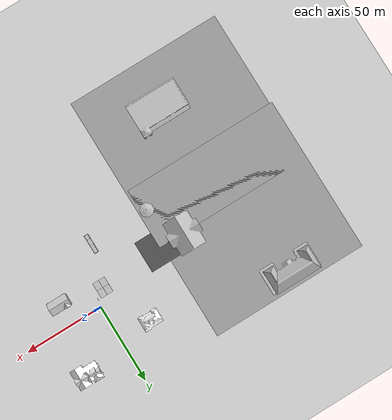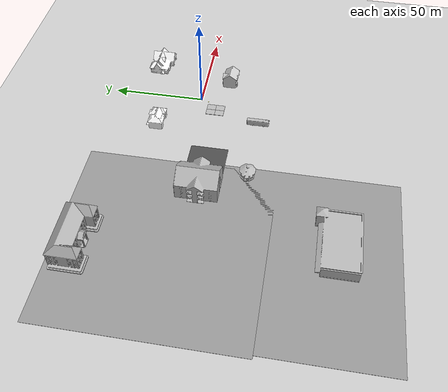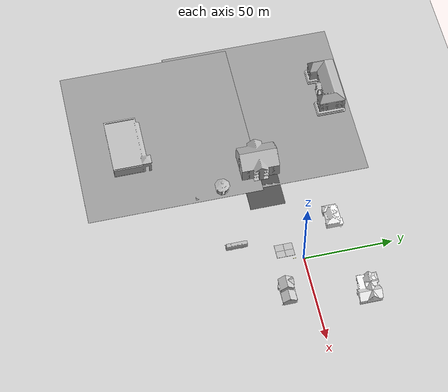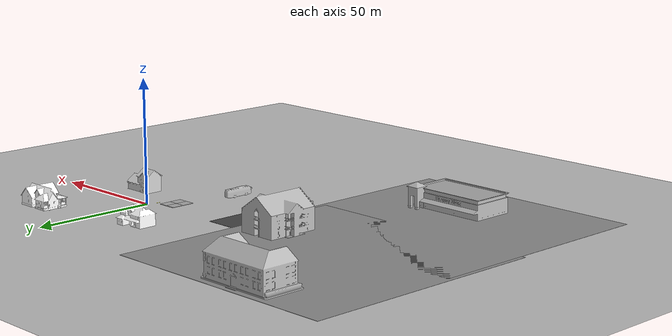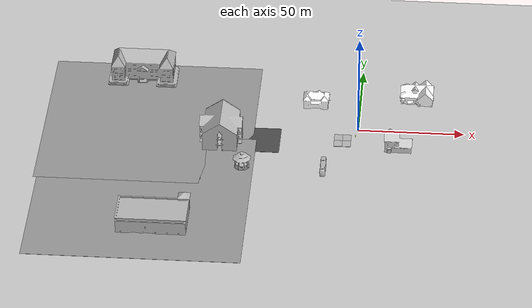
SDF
<sdf version="1.7">
 <world name="deneme_world">
  <light name="sun" type="directional">
   <pose>0 0 10 0 -0 0</pose>
   <diffuse>0.8 0.8 0.8 1</diffuse>
   <specular>0.2 0.2 0.2 1</specular>
   <attenuation>
    <range>1000</range>
    <constant>0.9</constant>
    <linear>0.01</linear>
    <quadratic>0.001</quadratic>
   </attenuation>
   <direction>-0.5 0.1 -0.9</direction>
   <spot><inner_angle>0</inner_angle><outer_angle>0</outer_angle><falloff>0</falloff></spot>
  </light>
  <model name="ground_plane">
   <static>1</static>
   <link name="link">
    <collision name="collision">
     <geometry><plane><normal>0 0 1</normal><size>100 100</size></plane></geometry>
     <surface>
      <contact><collide_bitmask>65535</collide_bitmask></contact>
      <friction><ode><mu>100</mu><mu2>50</mu2></ode></friction>
     </surface>
    </collision>
    <visual name="visual">
     <cast_shadows>0</cast_shadows>
     <geometry><plane><normal>0 0 1</normal><size>100 100</size></plane></geometry>
     <material>
      <script><uri>file://media/materials/scripts/gazebo.material</uri><name>Gazebo/Grey</name></script>
     </material>
    </visual>
   </link>
  </model>
  <gravity>0 0 -9.8</gravity>
  <magnetic_field>6e-06 2.3e-05 -4.2e-05</magnetic_field>
  <atmosphere type="adiabatic"/>
  <physics type="ode">
   <max_step_size>0.001</max_step_size>
   <real_time_factor>1</real_time_factor>
   <real_time_update_rate>1000</real_time_update_rate>
  </physics>
  <scene><ambient>0.4 0.4 0.4 1</ambient><background>0.7 0.7 0.7 1</background><shadows>1</shadows></scene>
  <spherical_coordinates>
   <surface_model>EARTH_WGS84</surface_model>
   <latitude_deg>0</latitude_deg>
   <longitude_deg>0</longitude_deg>
   <elevation>0</elevation>
   <heading_deg>0</heading_deg>
  </spherical_coordinates>
  <model name="drc_practice_yellow_parking_block">
   <static>1</static>
   <link name="link">
    <visual name="visual">
     <geometry><mesh><uri>model://drc_practice_yellow_parking_block/meshes/block.dae</uri></mesh></geometry>
    </visual>
    <collision name="collision">
     <geometry><mesh><uri>model://drc_practice_yellow_parking_block/meshes/block.dae</uri></mesh></geometry>
    </collision>
   </link>
   <pose>-1.16972 -4.84142 0 0 -0 0</pose>
  </model>
  <model name="House 2">
   <static>1</static>
   <link name="link">
    <collision name="collision">
     <geometry><mesh><uri>model://house_2/meshes/house_2.dae</uri><scale>1.5 1.5 1.5</scale></mesh></geometry>
    </collision>
    <visual name="visual">
     <geometry><mesh><uri>model://house_2/meshes/house_2.dae</uri><scale>1.5 1.5 1.5</scale></mesh></geometry>
     <material>
      <script>
       <uri>model://house_2/materials/scripts</uri>
       <uri>model://house_2/materials/textures</uri>
       <uri>model://house_1/materials/textures</uri>
       <name>House_2/Diffuse</name>
      </script>
      <shader type="normal_map_tangent_space">
       <normal_map>model://house_1/materials/textures/House_1_Normal.png</normal_map>
      </shader>
     </material>
    </visual>
   </link>
   <pose>-22.2931 20.7688 0 0 -0 0</pose>
  </model>
  <model name="House 1">
   <static>1</static>
   <link name="link">
    <collision name="collision">
     <geometry><mesh><uri>model://house_1/meshes/house_1.dae</uri><scale>1.5 1.5 1.5</scale></mesh></geometry>
    </collision>
    <visual name="visual">
     <geometry><mesh><uri>model://house_1/meshes/house_1.dae</uri><scale>1.5 1.5 1.5</scale></mesh></geometry>
     <material>
      <script>
       <uri>model://house_1/materials/scripts</uri>
       <uri>model://house_1/materials/textures</uri>
       <name>House_1/Diffuse</name>
      </script>
      <shader type="normal_map_tangent_space"><normal_map>House_1_Normal.png</normal_map></shader>
     </material>
    </visual>
   </link>
   <pose>26.8717 29.3354 0 0 -0 0</pose>
  </model>
  <model name="House 3">
   <static>1</static>
   <link name="link">
    <collision name="collision">
     <geometry><mesh><uri>model://house_3/meshes/house_3.dae</uri><scale>1.5 1.5 1.5</scale></mesh></geometry>
    </collision>
    <visual name="visual">
     <geometry><mesh><uri>model://house_3/meshes/house_3.dae</uri><scale>1.5 1.5 1.5</scale></mesh></geometry>
     <material>
      <script>
       <uri>model://house_3/materials/scripts</uri>
       <uri>model://house_3/materials/textures</uri>
       <uri>model://house_1/materials/textures</uri>
       <name>House_3/Diffuse</name>
      </script>
      <shader type="normal_map_tangent_space">
       <normal_map>model://house_1/materials/textures/House_1_Normal.png</normal_map>
      </shader>
     </material>
    </visual>
   </link>
   <pose>19.8577 -14.0427 0 0 -0 0</pose>
  </model>
  <model name="mud_box">
   <static>1</static>
   <link name="link">
    <collision name="collision"><geometry><box><size>8 10 0.2</size></box></geometry></collision>
    <visual name="visual_1">
     <pose>-2 2.5 0 0 -0 0</pose>
     <cast_shadows>0</cast_shadows>
     <geometry><box><size>4 5 0.2</size></box></geometry>
     <material>
      <script>
       <uri>model://mud_box/materials/scripts</uri>
       <uri>model://mud_box/materials/textures</uri>
       <name>vrc/mud</name>
      </script>
     </material>
    </visual>
    <visual name="visual_2">
     <pose>2 2.5 0 0 -0 0</pose>
     <cast_shadows>0</cast_shadows>
     <geometry><box><size>4 5 0.2</size></box></geometry>
     <material>
      <script>
       <uri>model://mud_box/materials/scripts</uri>
       <uri>model://mud_box/materials/textures</uri>
       <name>vrc/mud</name>
      </script>
     </material>
    </visual>
    <visual name="visual_3">
     <pose>2 -2.5 0 0 -0 0</pose>
     <cast_shadows>0</cast_shadows>
     <geometry><box><size>4 5 0.2</size></box></geometry>
     <material>
      <script>
       <uri>model://mud_box/materials/scripts</uri>
       <uri>model://mud_box/materials/textures</uri>
       <name>vrc/mud</name>
      </script>
     </material>
    </visual>
    <visual name="visual_4">
     <pose>-2 -2.5 0 0 -0 0</pose>
     <cast_shadows>0</cast_shadows>
     <geometry><box><size>4 5 0.2</size></box></geometry>
     <material>
      <script>
       <uri>model://mud_box/materials/scripts</uri>
       <uri>model://mud_box/materials/textures</uri>
       <name>vrc/mud</name>
      </script>
     </material>
    </visual>
   </link>
   <pose>-7.10761 -9.19563 0 0 -0 0</pose>
  </model>
  <model name="ground_plane_0">
   <static>1</static>
   <link name="link">
    <collision name="collision">
     <geometry><plane><normal>0 0 1</normal><size>100 100</size></plane></geometry>
     <surface>
      <contact><collide_bitmask>65535</collide_bitmask></contact>
      <friction><ode><mu>100</mu><mu2>50</mu2></ode></friction>
     </surface>
    </collision>
    <visual name="visual">
     <cast_shadows>0</cast_shadows>
     <geometry><plane><normal>0 0 1</normal><size>100 100</size></plane></geometry>
     <material>
      <script><uri>file://media/materials/scripts/gazebo.material</uri><name>Gazebo/Grey</name></script>
     </material>
    </visual>
   </link>
   <pose>-99.2238 0.228816 0 0 -0 0</pose>
  </model>
  <model name="ground_plane_1">
   <static>1</static>
   <link name="link">
    <collision name="collision">
     <geometry><plane><normal>0 0 1</normal><size>100 100</size></plane></geometry>
     <surface>
      <contact><collide_bitmask>65535</collide_bitmask></contact>
      <friction><ode><mu>100</mu><mu2>50</mu2></ode></friction>
     </surface>
    </collision>
    <visual name="visual">
     <cast_shadows>0</cast_shadows>
     <geometry><plane><normal>0 0 1</normal><size>100 100</size></plane></geometry>
     <material>
      <script><uri>file://media/materials/scripts/gazebo.material</uri><name>Gazebo/Grey</name></script>
     </material>
    </visual>
   </link>
   <pose>-97.5906 -61.3497 0 0 -0 0</pose>
  </model>
  <model name="apartment">
   <static>1</static>
   <link name="link">
    <collision name="collision">
     <geometry><mesh><uri>model://apartment/meshes/apartment.dae</uri></mesh></geometry>
    </collision>
    <visual name="visual">
     <geometry><mesh><uri>model://apartment/meshes/apartment.dae</uri></mesh></geometry>
    </visual>
   </link>
   <pose>-64.3683 -10.977 0 0 -0 0</pose>
  </model>
  <model name="asphalt_plane">
   <static>1</static>
   <link name="link">
    <collision name="collision"><geometry><box><size>20 20 0.1</size></box></geometry></collision>
    <visual name="visual">
     <cast_shadows>0</cast_shadows>
     <geometry><box><size>20 20 0.1</size></box></geometry>
     <material>
      <script>
       <uri>model://asphalt_plane/materials/scripts</uri>
       <uri>model://asphalt_plane/materials/textures</uri>
       <name>vrc/asphalt</name>
      </script>
     </material>
    </visual>
   </link>
   <pose>-46.4576 -11.4471 0 0 -0 0</pose>
  </model>
  <model name="gazebo">
   <static>1</static>
   <link name="link">
    <collision name="collision">
     <geometry><mesh><scale>3 3 2.5</scale><uri>model://gazebo/meshes/gazebo.dae</uri></mesh></geometry>
    </collision>
    <visual name="visual">
     <geometry><mesh><scale>3 3 2.5</scale><uri>model://gazebo/meshes/gazebo.dae</uri></mesh></geometry>
    </visual>
   </link>
   <pose>-52.9075 -34.0281 0 0 -0 0</pose>
  </model>
  <model name="grocery_store">
   <static>1</static>
   <link name="link">
    <collision name="collision">
     <pose>0 0 4.04605 0 -0 0</pose>
     <geometry><box><size>32.1985 17.5425 8.09209</size></box></geometry>
    </collision>
    <visual name="visual">
     <pose>0 -1.96155 0 0 -0 0</pose>
     <geometry><mesh><uri>model://grocery_store/meshes/grocery_store.dae</uri></mesh></geometry>
    </visual>
   </link>
   <pose>-90.1778 -82.8364 0 0 -0 0</pose>
  </model>
  <model name="school">
   <static>1</static>
   <link name="link">
    <collision name="collision">
     <geometry><mesh><uri>model://school/meshes/school.dae</uri></mesh></geometry>
    </collision>
    <visual name="visual"><geometry><mesh><uri>model://school/meshes/school.dae</uri></mesh></geometry></visual>
   </link>
   <pose>-106.167 41.8508 0 0 -0 0</pose>
  </model>
  <model name="bus">
   <static>1</static>
   <link name="link">
    <collision name="collision">
     <geometry><mesh><scale>0.01 0.01 0.01</scale><uri>model://bus/meshes/bus.obj</uri></mesh></geometry>
    </collision>
    <visual name="visual">
     <geometry><mesh><scale>0.01 0.01 0.01</scale><uri>model://bus/meshes/bus.obj</uri></mesh></geometry>
    </visual>
   </link>
   <pose>-14.8674 -34.4688 0 0 -0 0</pose>
  </model>
 </world>
</sdf>
